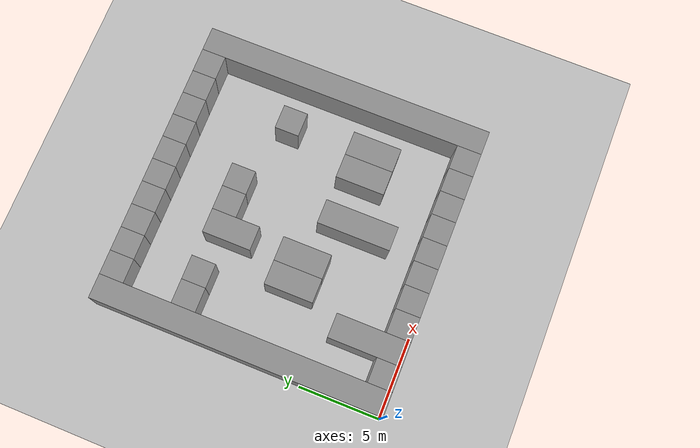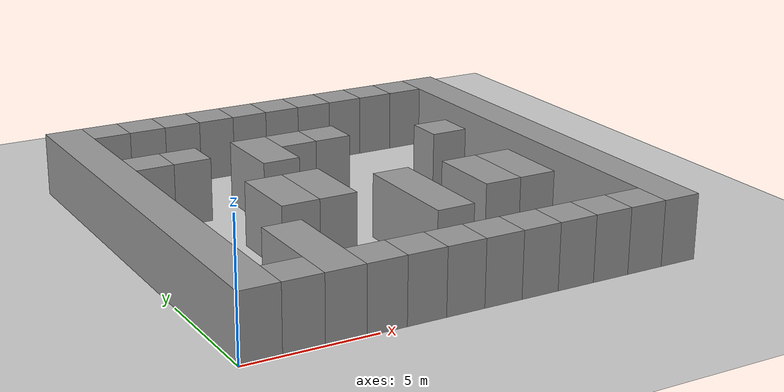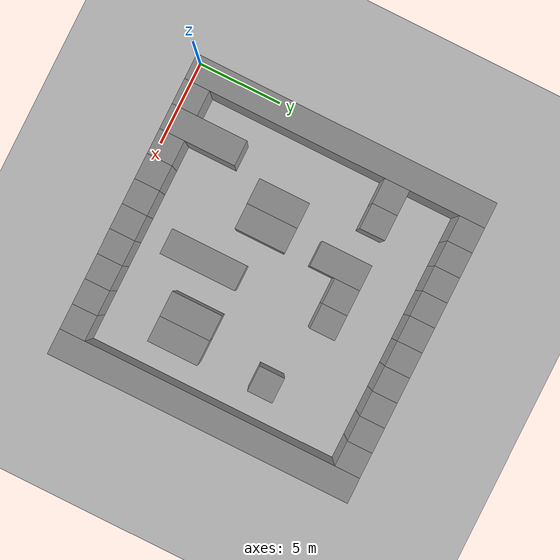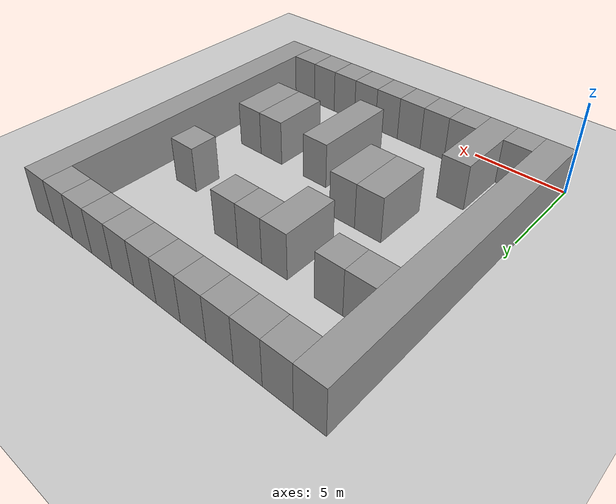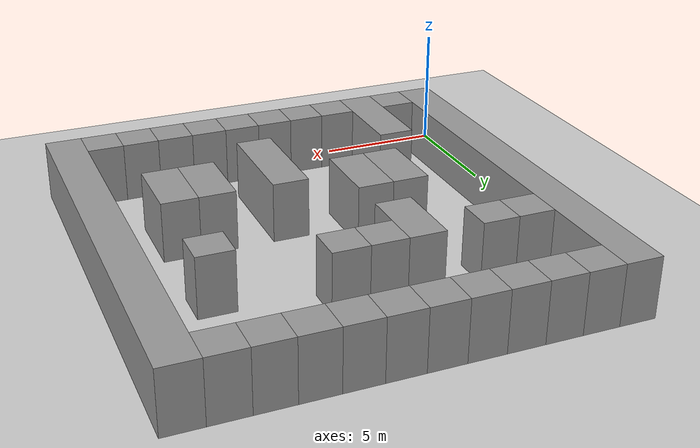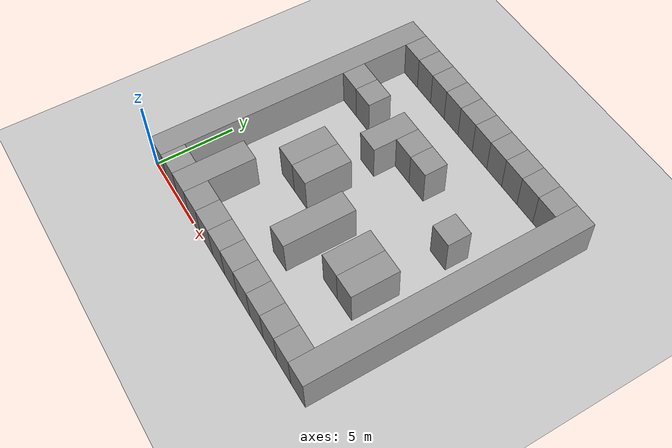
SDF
<?xml version='1.0'?>
        <sdf version='1.4'>
            <world name='1_wall'>
                <light name='sun' type='directional'>
                    <cast_shadows>1</cast_shadows>
                    <pose>0 0 10 0 -0 0</pose>
                    <diffuse>0.8 0.8 0.8 1</diffuse>
                    <specular>0.2 0.2 0.2 1</specular>
                    <attenuation>
                    <range>1000</range>
                    <constant>0.9</constant>
                    <linear>0.01</linear>
                    <quadratic>0.001</quadratic>
                    </attenuation>
                    <direction>-0.5 0.1 -0.9</direction>
                </light>
                <model name='ground_plane'>
                    <static>1</static>
                    <link name='link'>
                        <collision name='collision'>
                        <geometry>
                            <plane>
                                <normal>0 0 1</normal>
                                <size>1000 1000</size>
                            </plane>
                        </geometry>
                        <surface>
                            <friction>
                                <ode>
                                    <mu>100</mu>
                                    <mu2>50</mu2>
                                </ode>
                            </friction>
                            <bounce/>
                                <contact>
                                    <ode/>
                                </contact>
                        </surface>
                        <max_contacts>10</max_contacts>
                        </collision>
                    <visual name='visual'>
                        <cast_shadows>0</cast_shadows>
                        <geometry>
                            <plane>
                                <normal>0 0 1</normal>
                                <size>10000 10000</size>
                            </plane>
                            </geometry>
                                <material>
                                <script>
                                        <uri>file://media/materials/scripts/gazebo.material</uri>
                                        <name>Gazebo/Grey</name>
                                        </script>
                                    </material>
                    </visual>
                    <velocity_decay>
                        <linear>0</linear>
                        <angular>0</angular>
                    </velocity_decay>
                    <self_collide>0</self_collide>
                        <kinematic>0</kinematic>
                        <gravity>1</gravity>
                    </link>
                </model>
                <physics type='ode'>
                    <max_step_size>0.01</max_step_size>
                    <real_time_factor>1</real_time_factor>
                    <real_time_update_rate>100</real_time_update_rate>
                    <gravity>0 0 -9.8</gravity>
                </physics>
            <scene>
                <ambient>0.4 0.4 0.4 1</ambient>
                <background>0.7 0.7 0.7 1</background>
                <shadows>1</shadows>
            </scene>
    <model name='Wall_0'>
     <static>1</static>
    <link name='Wall_0'>
    <collision name='Wall_Collision_0'>
        <geometry>
          <box>
            <size>18.0 1.5 2.5</size>
          </box>
        </geometry>
        <pose>0 0 1.25 0 -0 0</pose>
      </collision>
      <visual name='Wall_Visual_0'>
        <pose>0 0 1.25 0 -0 0</pose>
        <geometry>
          <box>
            <size>18.0 1.5 2.5</size>
          </box>
        </geometry>
        <material>
          <script>
            <uri>file://media/materials/scripts/gazebo.material</uri>
            <name>Gazebo/Grey</name>
          </script>
        </material>
      </visual>
      <velocity_decay>
        <linear>0</linear>
        <angular>0</angular>
      </velocity_decay>
      <pose>0.75 9.0 0 0 0 1.5707963267948966</pose>
    </link>
     </model><model name='Wall_1'>
     <static>1</static>
    <link name='Wall_1'>
    <collision name='Wall_Collision_1'>
        <geometry>
          <box>
            <size>1.5 1.5 2.5</size>
          </box>
        </geometry>
        <pose>0 0 1.25 0 -0 0</pose>
      </collision>
      <visual name='Wall_Visual_1'>
        <pose>0 0 1.25 0 -0 0</pose>
        <geometry>
          <box>
            <size>1.5 1.5 2.5</size>
          </box>
        </geometry>
        <material>
          <script>
            <uri>file://media/materials/scripts/gazebo.material</uri>
            <name>Gazebo/Grey</name>
          </script>
        </material>
      </visual>
      <velocity_decay>
        <linear>0</linear>
        <angular>0</angular>
      </velocity_decay>
      <pose>2.25 0.75 0 0 0 1.5707963267948966</pose>
    </link>
     </model><model name='Wall_2'>
     <static>1</static>
    <link name='Wall_2'>
    <collision name='Wall_Collision_2'>
        <geometry>
          <box>
            <size>1.5 1.5 2.5</size>
          </box>
        </geometry>
        <pose>0 0 1.25 0 -0 0</pose>
      </collision>
      <visual name='Wall_Visual_2'>
        <pose>0 0 1.25 0 -0 0</pose>
        <geometry>
          <box>
            <size>1.5 1.5 2.5</size>
          </box>
        </geometry>
        <material>
          <script>
            <uri>file://media/materials/scripts/gazebo.material</uri>
            <name>Gazebo/Grey</name>
          </script>
        </material>
      </visual>
      <velocity_decay>
        <linear>0</linear>
        <angular>0</angular>
      </velocity_decay>
      <pose>2.25 12.75 0 0 0 1.5707963267948966</pose>
    </link>
     </model><model name='Wall_3'>
     <static>1</static>
    <link name='Wall_3'>
    <collision name='Wall_Collision_3'>
        <geometry>
          <box>
            <size>1.5 1.5 2.5</size>
          </box>
        </geometry>
        <pose>0 0 1.25 0 -0 0</pose>
      </collision>
      <visual name='Wall_Visual_3'>
        <pose>0 0 1.25 0 -0 0</pose>
        <geometry>
          <box>
            <size>1.5 1.5 2.5</size>
          </box>
        </geometry>
        <material>
          <script>
            <uri>file://media/materials/scripts/gazebo.material</uri>
            <name>Gazebo/Grey</name>
          </script>
        </material>
      </visual>
      <velocity_decay>
        <linear>0</linear>
        <angular>0</angular>
      </velocity_decay>
      <pose>2.25 17.25 0 0 0 1.5707963267948966</pose>
    </link>
     </model><model name='Wall_4'>
     <static>1</static>
    <link name='Wall_4'>
    <collision name='Wall_Collision_4'>
        <geometry>
          <box>
            <size>4.5 1.5 2.5</size>
          </box>
        </geometry>
        <pose>0 0 1.25 0 -0 0</pose>
      </collision>
      <visual name='Wall_Visual_4'>
        <pose>0 0 1.25 0 -0 0</pose>
        <geometry>
          <box>
            <size>4.5 1.5 2.5</size>
          </box>
        </geometry>
        <material>
          <script>
            <uri>file://media/materials/scripts/gazebo.material</uri>
            <name>Gazebo/Grey</name>
          </script>
        </material>
      </visual>
      <velocity_decay>
        <linear>0</linear>
        <angular>0</angular>
      </velocity_decay>
      <pose>3.75 2.25 0 0 0 1.5707963267948966</pose>
    </link>
     </model><model name='Wall_5'>
     <static>1</static>
    <link name='Wall_5'>
    <collision name='Wall_Collision_5'>
        <geometry>
          <box>
            <size>1.5 1.5 2.5</size>
          </box>
        </geometry>
        <pose>0 0 1.25 0 -0 0</pose>
      </collision>
      <visual name='Wall_Visual_5'>
        <pose>0 0 1.25 0 -0 0</pose>
        <geometry>
          <box>
            <size>1.5 1.5 2.5</size>
          </box>
        </geometry>
        <material>
          <script>
            <uri>file://media/materials/scripts/gazebo.material</uri>
            <name>Gazebo/Grey</name>
          </script>
        </material>
      </visual>
      <velocity_decay>
        <linear>0</linear>
        <angular>0</angular>
      </velocity_decay>
      <pose>3.75 12.75 0 0 0 1.5707963267948966</pose>
    </link>
     </model><model name='Wall_6'>
     <static>1</static>
    <link name='Wall_6'>
    <collision name='Wall_Collision_6'>
        <geometry>
          <box>
            <size>1.5 1.5 2.5</size>
          </box>
        </geometry>
        <pose>0 0 1.25 0 -0 0</pose>
      </collision>
      <visual name='Wall_Visual_6'>
        <pose>0 0 1.25 0 -0 0</pose>
        <geometry>
          <box>
            <size>1.5 1.5 2.5</size>
          </box>
        </geometry>
        <material>
          <script>
            <uri>file://media/materials/scripts/gazebo.material</uri>
            <name>Gazebo/Grey</name>
          </script>
        </material>
      </visual>
      <velocity_decay>
        <linear>0</linear>
        <angular>0</angular>
      </velocity_decay>
      <pose>3.75 17.25 0 0 0 1.5707963267948966</pose>
    </link>
     </model><model name='Wall_7'>
     <static>1</static>
    <link name='Wall_7'>
    <collision name='Wall_Collision_7'>
        <geometry>
          <box>
            <size>1.5 1.5 2.5</size>
          </box>
        </geometry>
        <pose>0 0 1.25 0 -0 0</pose>
      </collision>
      <visual name='Wall_Visual_7'>
        <pose>0 0 1.25 0 -0 0</pose>
        <geometry>
          <box>
            <size>1.5 1.5 2.5</size>
          </box>
        </geometry>
        <material>
          <script>
            <uri>file://media/materials/scripts/gazebo.material</uri>
            <name>Gazebo/Grey</name>
          </script>
        </material>
      </visual>
      <velocity_decay>
        <linear>0</linear>
        <angular>0</angular>
      </velocity_decay>
      <pose>5.25 0.75 0 0 0 1.5707963267948966</pose>
    </link>
     </model><model name='Wall_8'>
     <static>1</static>
    <link name='Wall_8'>
    <collision name='Wall_Collision_8'>
        <geometry>
          <box>
            <size>3.0 1.5 2.5</size>
          </box>
        </geometry>
        <pose>0 0 1.25 0 -0 0</pose>
      </collision>
      <visual name='Wall_Visual_8'>
        <pose>0 0 1.25 0 -0 0</pose>
        <geometry>
          <box>
            <size>3.0 1.5 2.5</size>
          </box>
        </geometry>
        <material>
          <script>
            <uri>file://media/materials/scripts/gazebo.material</uri>
            <name>Gazebo/Grey</name>
          </script>
        </material>
      </visual>
      <velocity_decay>
        <linear>0</linear>
        <angular>0</angular>
      </velocity_decay>
      <pose>5.25 7.5 0 0 0 1.5707963267948966</pose>
    </link>
     </model><model name='Wall_9'>
     <static>1</static>
    <link name='Wall_9'>
    <collision name='Wall_Collision_9'>
        <geometry>
          <box>
            <size>1.5 1.5 2.5</size>
          </box>
        </geometry>
        <pose>0 0 1.25 0 -0 0</pose>
      </collision>
      <visual name='Wall_Visual_9'>
        <pose>0 0 1.25 0 -0 0</pose>
        <geometry>
          <box>
            <size>1.5 1.5 2.5</size>
          </box>
        </geometry>
        <material>
          <script>
            <uri>file://media/materials/scripts/gazebo.material</uri>
            <name>Gazebo/Grey</name>
          </script>
        </material>
      </visual>
      <velocity_decay>
        <linear>0</linear>
        <angular>0</angular>
      </velocity_decay>
      <pose>5.25 17.25 0 0 0 1.5707963267948966</pose>
    </link>
     </model><model name='Wall_10'>
     <static>1</static>
    <link name='Wall_10'>
    <collision name='Wall_Collision_10'>
        <geometry>
          <box>
            <size>1.5 1.5 2.5</size>
          </box>
        </geometry>
        <pose>0 0 1.25 0 -0 0</pose>
      </collision>
      <visual name='Wall_Visual_10'>
        <pose>0 0 1.25 0 -0 0</pose>
        <geometry>
          <box>
            <size>1.5 1.5 2.5</size>
          </box>
        </geometry>
        <material>
          <script>
            <uri>file://media/materials/scripts/gazebo.material</uri>
            <name>Gazebo/Grey</name>
          </script>
        </material>
      </visual>
      <velocity_decay>
        <linear>0</linear>
        <angular>0</angular>
      </velocity_decay>
      <pose>6.75 0.75 0 0 0 1.5707963267948966</pose>
    </link>
     </model><model name='Wall_11'>
     <static>1</static>
    <link name='Wall_11'>
    <collision name='Wall_Collision_11'>
        <geometry>
          <box>
            <size>3.0 1.5 2.5</size>
          </box>
        </geometry>
        <pose>0 0 1.25 0 -0 0</pose>
      </collision>
      <visual name='Wall_Visual_11'>
        <pose>0 0 1.25 0 -0 0</pose>
        <geometry>
          <box>
            <size>3.0 1.5 2.5</size>
          </box>
        </geometry>
        <material>
          <script>
            <uri>file://media/materials/scripts/gazebo.material</uri>
            <name>Gazebo/Grey</name>
          </script>
        </material>
      </visual>
      <velocity_decay>
        <linear>0</linear>
        <angular>0</angular>
      </velocity_decay>
      <pose>6.75 7.5 0 0 0 1.5707963267948966</pose>
    </link>
     </model><model name='Wall_12'>
     <static>1</static>
    <link name='Wall_12'>
    <collision name='Wall_Collision_12'>
        <geometry>
          <box>
            <size>3.0 1.5 2.5</size>
          </box>
        </geometry>
        <pose>0 0 1.25 0 -0 0</pose>
      </collision>
      <visual name='Wall_Visual_12'>
        <pose>0 0 1.25 0 -0 0</pose>
        <geometry>
          <box>
            <size>3.0 1.5 2.5</size>
          </box>
        </geometry>
        <material>
          <script>
            <uri>file://media/materials/scripts/gazebo.material</uri>
            <name>Gazebo/Grey</name>
          </script>
        </material>
      </visual>
      <velocity_decay>
        <linear>0</linear>
        <angular>0</angular>
      </velocity_decay>
      <pose>6.75 12.0 0 0 0 1.5707963267948966</pose>
    </link>
     </model><model name='Wall_13'>
     <static>1</static>
    <link name='Wall_13'>
    <collision name='Wall_Collision_13'>
        <geometry>
          <box>
            <size>1.5 1.5 2.5</size>
          </box>
        </geometry>
        <pose>0 0 1.25 0 -0 0</pose>
      </collision>
      <visual name='Wall_Visual_13'>
        <pose>0 0 1.25 0 -0 0</pose>
        <geometry>
          <box>
            <size>1.5 1.5 2.5</size>
          </box>
        </geometry>
        <material>
          <script>
            <uri>file://media/materials/scripts/gazebo.material</uri>
            <name>Gazebo/Grey</name>
          </script>
        </material>
      </visual>
      <velocity_decay>
        <linear>0</linear>
        <angular>0</angular>
      </velocity_decay>
      <pose>6.75 17.25 0 0 0 1.5707963267948966</pose>
    </link>
     </model><model name='Wall_14'>
     <static>1</static>
    <link name='Wall_14'>
    <collision name='Wall_Collision_14'>
        <geometry>
          <box>
            <size>1.5 1.5 2.5</size>
          </box>
        </geometry>
        <pose>0 0 1.25 0 -0 0</pose>
      </collision>
      <visual name='Wall_Visual_14'>
        <pose>0 0 1.25 0 -0 0</pose>
        <geometry>
          <box>
            <size>1.5 1.5 2.5</size>
          </box>
        </geometry>
        <material>
          <script>
            <uri>file://media/materials/scripts/gazebo.material</uri>
            <name>Gazebo/Grey</name>
          </script>
        </material>
      </visual>
      <velocity_decay>
        <linear>0</linear>
        <angular>0</angular>
      </velocity_decay>
      <pose>8.25 0.75 0 0 0 1.5707963267948966</pose>
    </link>
     </model><model name='Wall_15'>
     <static>1</static>
    <link name='Wall_15'>
    <collision name='Wall_Collision_15'>
        <geometry>
          <box>
            <size>1.5 1.5 2.5</size>
          </box>
        </geometry>
        <pose>0 0 1.25 0 -0 0</pose>
      </collision>
      <visual name='Wall_Visual_15'>
        <pose>0 0 1.25 0 -0 0</pose>
        <geometry>
          <box>
            <size>1.5 1.5 2.5</size>
          </box>
        </geometry>
        <material>
          <script>
            <uri>file://media/materials/scripts/gazebo.material</uri>
            <name>Gazebo/Grey</name>
          </script>
        </material>
      </visual>
      <velocity_decay>
        <linear>0</linear>
        <angular>0</angular>
      </velocity_decay>
      <pose>8.25 12.75 0 0 0 1.5707963267948966</pose>
    </link>
     </model><model name='Wall_16'>
     <static>1</static>
    <link name='Wall_16'>
    <collision name='Wall_Collision_16'>
        <geometry>
          <box>
            <size>1.5 1.5 2.5</size>
          </box>
        </geometry>
        <pose>0 0 1.25 0 -0 0</pose>
      </collision>
      <visual name='Wall_Visual_16'>
        <pose>0 0 1.25 0 -0 0</pose>
        <geometry>
          <box>
            <size>1.5 1.5 2.5</size>
          </box>
        </geometry>
        <material>
          <script>
            <uri>file://media/materials/scripts/gazebo.material</uri>
            <name>Gazebo/Grey</name>
          </script>
        </material>
      </visual>
      <velocity_decay>
        <linear>0</linear>
        <angular>0</angular>
      </velocity_decay>
      <pose>8.25 17.25 0 0 0 1.5707963267948966</pose>
    </link>
     </model><model name='Wall_17'>
     <static>1</static>
    <link name='Wall_17'>
    <collision name='Wall_Collision_17'>
        <geometry>
          <box>
            <size>1.5 1.5 2.5</size>
          </box>
        </geometry>
        <pose>0 0 1.25 0 -0 0</pose>
      </collision>
      <visual name='Wall_Visual_17'>
        <pose>0 0 1.25 0 -0 0</pose>
        <geometry>
          <box>
            <size>1.5 1.5 2.5</size>
          </box>
        </geometry>
        <material>
          <script>
            <uri>file://media/materials/scripts/gazebo.material</uri>
            <name>Gazebo/Grey</name>
          </script>
        </material>
      </visual>
      <velocity_decay>
        <linear>0</linear>
        <angular>0</angular>
      </velocity_decay>
      <pose>9.75 0.75 0 0 0 1.5707963267948966</pose>
    </link>
     </model><model name='Wall_18'>
     <static>1</static>
    <link name='Wall_18'>
    <collision name='Wall_Collision_18'>
        <geometry>
          <box>
            <size>4.5 1.5 2.5</size>
          </box>
        </geometry>
        <pose>0 0 1.25 0 -0 0</pose>
      </collision>
      <visual name='Wall_Visual_18'>
        <pose>0 0 1.25 0 -0 0</pose>
        <geometry>
          <box>
            <size>4.5 1.5 2.5</size>
          </box>
        </geometry>
        <material>
          <script>
            <uri>file://media/materials/scripts/gazebo.material</uri>
            <name>Gazebo/Grey</name>
          </script>
        </material>
      </visual>
      <velocity_decay>
        <linear>0</linear>
        <angular>0</angular>
      </velocity_decay>
      <pose>9.75 5.25 0 0 0 1.5707963267948966</pose>
    </link>
     </model><model name='Wall_19'>
     <static>1</static>
    <link name='Wall_19'>
    <collision name='Wall_Collision_19'>
        <geometry>
          <box>
            <size>1.5 1.5 2.5</size>
          </box>
        </geometry>
        <pose>0 0 1.25 0 -0 0</pose>
      </collision>
      <visual name='Wall_Visual_19'>
        <pose>0 0 1.25 0 -0 0</pose>
        <geometry>
          <box>
            <size>1.5 1.5 2.5</size>
          </box>
        </geometry>
        <material>
          <script>
            <uri>file://media/materials/scripts/gazebo.material</uri>
            <name>Gazebo/Grey</name>
          </script>
        </material>
      </visual>
      <velocity_decay>
        <linear>0</linear>
        <angular>0</angular>
      </velocity_decay>
      <pose>9.75 12.75 0 0 0 1.5707963267948966</pose>
    </link>
     </model><model name='Wall_20'>
     <static>1</static>
    <link name='Wall_20'>
    <collision name='Wall_Collision_20'>
        <geometry>
          <box>
            <size>1.5 1.5 2.5</size>
          </box>
        </geometry>
        <pose>0 0 1.25 0 -0 0</pose>
      </collision>
      <visual name='Wall_Visual_20'>
        <pose>0 0 1.25 0 -0 0</pose>
        <geometry>
          <box>
            <size>1.5 1.5 2.5</size>
          </box>
        </geometry>
        <material>
          <script>
            <uri>file://media/materials/scripts/gazebo.material</uri>
            <name>Gazebo/Grey</name>
          </script>
        </material>
      </visual>
      <velocity_decay>
        <linear>0</linear>
        <angular>0</angular>
      </velocity_decay>
      <pose>9.75 17.25 0 0 0 1.5707963267948966</pose>
    </link>
     </model><model name='Wall_21'>
     <static>1</static>
    <link name='Wall_21'>
    <collision name='Wall_Collision_21'>
        <geometry>
          <box>
            <size>1.5 1.5 2.5</size>
          </box>
        </geometry>
        <pose>0 0 1.25 0 -0 0</pose>
      </collision>
      <visual name='Wall_Visual_21'>
        <pose>0 0 1.25 0 -0 0</pose>
        <geometry>
          <box>
            <size>1.5 1.5 2.5</size>
          </box>
        </geometry>
        <material>
          <script>
            <uri>file://media/materials/scripts/gazebo.material</uri>
            <name>Gazebo/Grey</name>
          </script>
        </material>
      </visual>
      <velocity_decay>
        <linear>0</linear>
        <angular>0</angular>
      </velocity_decay>
      <pose>11.25 0.75 0 0 0 1.5707963267948966</pose>
    </link>
     </model><model name='Wall_22'>
     <static>1</static>
    <link name='Wall_22'>
    <collision name='Wall_Collision_22'>
        <geometry>
          <box>
            <size>1.5 1.5 2.5</size>
          </box>
        </geometry>
        <pose>0 0 1.25 0 -0 0</pose>
      </collision>
      <visual name='Wall_Visual_22'>
        <pose>0 0 1.25 0 -0 0</pose>
        <geometry>
          <box>
            <size>1.5 1.5 2.5</size>
          </box>
        </geometry>
        <material>
          <script>
            <uri>file://media/materials/scripts/gazebo.material</uri>
            <name>Gazebo/Grey</name>
          </script>
        </material>
      </visual>
      <velocity_decay>
        <linear>0</linear>
        <angular>0</angular>
      </velocity_decay>
      <pose>11.25 17.25 0 0 0 1.5707963267948966</pose>
    </link>
     </model><model name='Wall_23'>
     <static>1</static>
    <link name='Wall_23'>
    <collision name='Wall_Collision_23'>
        <geometry>
          <box>
            <size>1.5 1.5 2.5</size>
          </box>
        </geometry>
        <pose>0 0 1.25 0 -0 0</pose>
      </collision>
      <visual name='Wall_Visual_23'>
        <pose>0 0 1.25 0 -0 0</pose>
        <geometry>
          <box>
            <size>1.5 1.5 2.5</size>
          </box>
        </geometry>
        <material>
          <script>
            <uri>file://media/materials/scripts/gazebo.material</uri>
            <name>Gazebo/Grey</name>
          </script>
        </material>
      </visual>
      <velocity_decay>
        <linear>0</linear>
        <angular>0</angular>
      </velocity_decay>
      <pose>12.75 0.75 0 0 0 1.5707963267948966</pose>
    </link>
     </model><model name='Wall_24'>
     <static>1</static>
    <link name='Wall_24'>
    <collision name='Wall_Collision_24'>
        <geometry>
          <box>
            <size>3.0 1.5 2.5</size>
          </box>
        </geometry>
        <pose>0 0 1.25 0 -0 0</pose>
      </collision>
      <visual name='Wall_Visual_24'>
        <pose>0 0 1.25 0 -0 0</pose>
        <geometry>
          <box>
            <size>3.0 1.5 2.5</size>
          </box>
        </geometry>
        <material>
          <script>
            <uri>file://media/materials/scripts/gazebo.material</uri>
            <name>Gazebo/Grey</name>
          </script>
        </material>
      </visual>
      <velocity_decay>
        <linear>0</linear>
        <angular>0</angular>
      </velocity_decay>
      <pose>12.75 6.0 0 0 0 1.5707963267948966</pose>
    </link>
     </model><model name='Wall_25'>
     <static>1</static>
    <link name='Wall_25'>
    <collision name='Wall_Collision_25'>
        <geometry>
          <box>
            <size>1.5 1.5 2.5</size>
          </box>
        </geometry>
        <pose>0 0 1.25 0 -0 0</pose>
      </collision>
      <visual name='Wall_Visual_25'>
        <pose>0 0 1.25 0 -0 0</pose>
        <geometry>
          <box>
            <size>1.5 1.5 2.5</size>
          </box>
        </geometry>
        <material>
          <script>
            <uri>file://media/materials/scripts/gazebo.material</uri>
            <name>Gazebo/Grey</name>
          </script>
        </material>
      </visual>
      <velocity_decay>
        <linear>0</linear>
        <angular>0</angular>
      </velocity_decay>
      <pose>12.75 17.25 0 0 0 1.5707963267948966</pose>
    </link>
     </model><model name='Wall_26'>
     <static>1</static>
    <link name='Wall_26'>
    <collision name='Wall_Collision_26'>
        <geometry>
          <box>
            <size>1.5 1.5 2.5</size>
          </box>
        </geometry>
        <pose>0 0 1.25 0 -0 0</pose>
      </collision>
      <visual name='Wall_Visual_26'>
        <pose>0 0 1.25 0 -0 0</pose>
        <geometry>
          <box>
            <size>1.5 1.5 2.5</size>
          </box>
        </geometry>
        <material>
          <script>
            <uri>file://media/materials/scripts/gazebo.material</uri>
            <name>Gazebo/Grey</name>
          </script>
        </material>
      </visual>
      <velocity_decay>
        <linear>0</linear>
        <angular>0</angular>
      </velocity_decay>
      <pose>14.25 0.75 0 0 0 1.5707963267948966</pose>
    </link>
     </model><model name='Wall_27'>
     <static>1</static>
    <link name='Wall_27'>
    <collision name='Wall_Collision_27'>
        <geometry>
          <box>
            <size>3.0 1.5 2.5</size>
          </box>
        </geometry>
        <pose>0 0 1.25 0 -0 0</pose>
      </collision>
      <visual name='Wall_Visual_27'>
        <pose>0 0 1.25 0 -0 0</pose>
        <geometry>
          <box>
            <size>3.0 1.5 2.5</size>
          </box>
        </geometry>
        <material>
          <script>
            <uri>file://media/materials/scripts/gazebo.material</uri>
            <name>Gazebo/Grey</name>
          </script>
        </material>
      </visual>
      <velocity_decay>
        <linear>0</linear>
        <angular>0</angular>
      </velocity_decay>
      <pose>14.25 6.0 0 0 0 1.5707963267948966</pose>
    </link>
     </model><model name='Wall_28'>
     <static>1</static>
    <link name='Wall_28'>
    <collision name='Wall_Collision_28'>
        <geometry>
          <box>
            <size>1.5 1.5 2.5</size>
          </box>
        </geometry>
        <pose>0 0 1.25 0 -0 0</pose>
      </collision>
      <visual name='Wall_Visual_28'>
        <pose>0 0 1.25 0 -0 0</pose>
        <geometry>
          <box>
            <size>1.5 1.5 2.5</size>
          </box>
        </geometry>
        <material>
          <script>
            <uri>file://media/materials/scripts/gazebo.material</uri>
            <name>Gazebo/Grey</name>
          </script>
        </material>
      </visual>
      <velocity_decay>
        <linear>0</linear>
        <angular>0</angular>
      </velocity_decay>
      <pose>14.25 11.25 0 0 0 1.5707963267948966</pose>
    </link>
     </model><model name='Wall_29'>
     <static>1</static>
    <link name='Wall_29'>
    <collision name='Wall_Collision_29'>
        <geometry>
          <box>
            <size>1.5 1.5 2.5</size>
          </box>
        </geometry>
        <pose>0 0 1.25 0 -0 0</pose>
      </collision>
      <visual name='Wall_Visual_29'>
        <pose>0 0 1.25 0 -0 0</pose>
        <geometry>
          <box>
            <size>1.5 1.5 2.5</size>
          </box>
        </geometry>
        <material>
          <script>
            <uri>file://media/materials/scripts/gazebo.material</uri>
            <name>Gazebo/Grey</name>
          </script>
        </material>
      </visual>
      <velocity_decay>
        <linear>0</linear>
        <angular>0</angular>
      </velocity_decay>
      <pose>14.25 17.25 0 0 0 1.5707963267948966</pose>
    </link>
     </model><model name='Wall_30'>
     <static>1</static>
    <link name='Wall_30'>
    <collision name='Wall_Collision_30'>
        <geometry>
          <box>
            <size>1.5 1.5 2.5</size>
          </box>
        </geometry>
        <pose>0 0 1.25 0 -0 0</pose>
      </collision>
      <visual name='Wall_Visual_30'>
        <pose>0 0 1.25 0 -0 0</pose>
        <geometry>
          <box>
            <size>1.5 1.5 2.5</size>
          </box>
        </geometry>
        <material>
          <script>
            <uri>file://media/materials/scripts/gazebo.material</uri>
            <name>Gazebo/Grey</name>
          </script>
        </material>
      </visual>
      <velocity_decay>
        <linear>0</linear>
        <angular>0</angular>
      </velocity_decay>
      <pose>15.75 0.75 0 0 0 1.5707963267948966</pose>
    </link>
     </model><model name='Wall_31'>
     <static>1</static>
    <link name='Wall_31'>
    <collision name='Wall_Collision_31'>
        <geometry>
          <box>
            <size>1.5 1.5 2.5</size>
          </box>
        </geometry>
        <pose>0 0 1.25 0 -0 0</pose>
      </collision>
      <visual name='Wall_Visual_31'>
        <pose>0 0 1.25 0 -0 0</pose>
        <geometry>
          <box>
            <size>1.5 1.5 2.5</size>
          </box>
        </geometry>
        <material>
          <script>
            <uri>file://media/materials/scripts/gazebo.material</uri>
            <name>Gazebo/Grey</name>
          </script>
        </material>
      </visual>
      <velocity_decay>
        <linear>0</linear>
        <angular>0</angular>
      </velocity_decay>
      <pose>15.75 17.25 0 0 0 1.5707963267948966</pose>
    </link>
     </model><model name='Wall_32'>
     <static>1</static>
    <link name='Wall_32'>
    <collision name='Wall_Collision_32'>
        <geometry>
          <box>
            <size>18.0 1.5 2.5</size>
          </box>
        </geometry>
        <pose>0 0 1.25 0 -0 0</pose>
      </collision>
      <visual name='Wall_Visual_32'>
        <pose>0 0 1.25 0 -0 0</pose>
        <geometry>
          <box>
            <size>18.0 1.5 2.5</size>
          </box>
        </geometry>
        <material>
          <script>
            <uri>file://media/materials/scripts/gazebo.material</uri>
            <name>Gazebo/Grey</name>
          </script>
        </material>
      </visual>
      <velocity_decay>
        <linear>0</linear>
        <angular>0</angular>
      </velocity_decay>
      <pose>17.25 9.0 0 0 0 1.5707963267948966</pose>
    </link>
     </model></world>
        </sdf>
